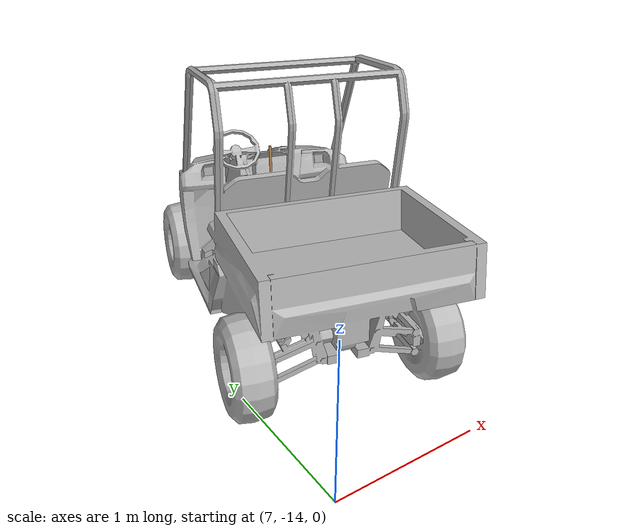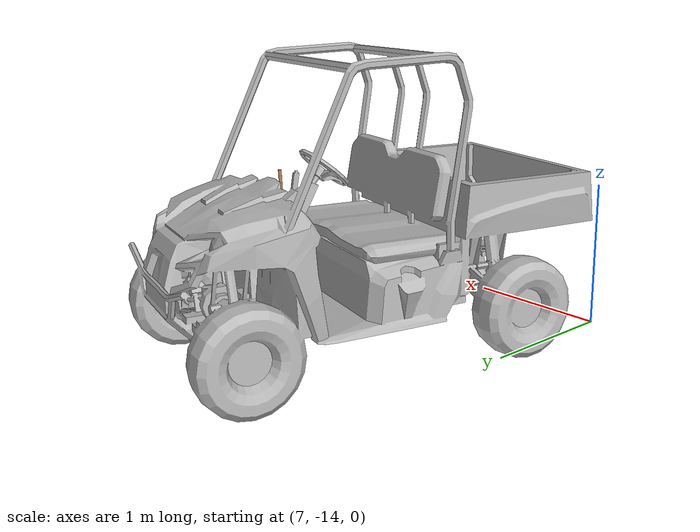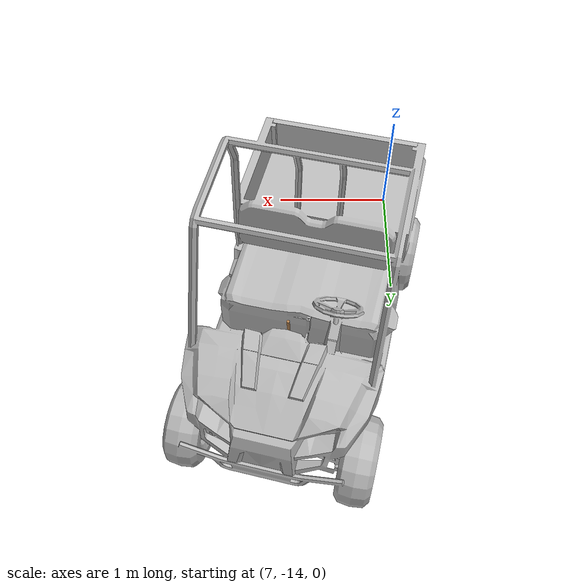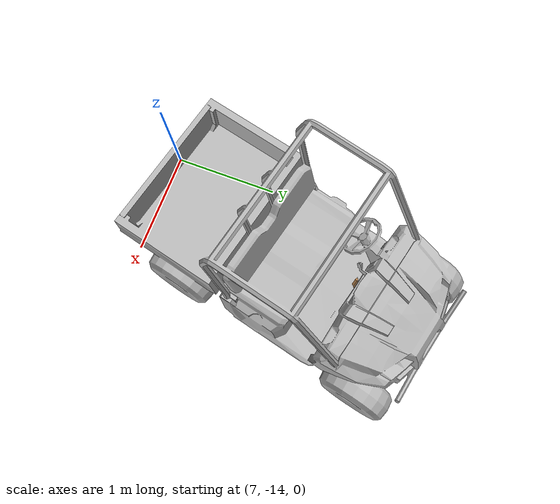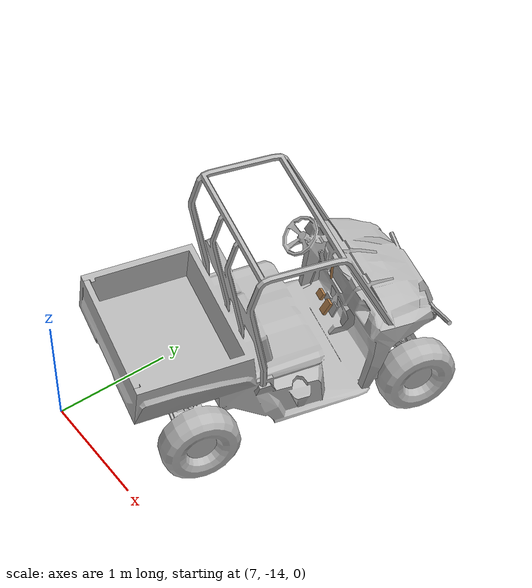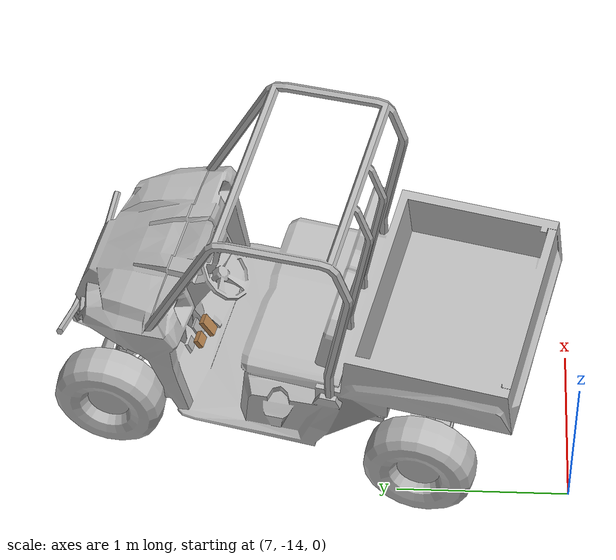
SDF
<sdf version="1.6">
 <world name="default">
  <model name="polaris_ranger_ev_clone_1_clone_clone_clone_clone_8">
   <static>true</static>
   <link name="chassis">
    <inertial>
     <mass>720</mass>
     <inertia><ixx>140</ixx><ixy>0</ixy><iyy>550</iyy><ixz>0</ixz><iyz>0</iyz><izz>550</izz></inertia>
    </inertial>
    <visual name="visual">
     <pose>0 0 0 0 0 -1.5708</pose>
     <geometry><mesh><uri>model://polaris_ranger_ev/meshes/polaris.dae</uri><scale>1 1 1</scale></mesh></geometry>
     <material>
      <script>
       <uri>model://polaris_ranger_ev/materials/scripts</uri>
       <uri>model://polaris_ranger_ev/materials/textures</uri>
       <name>Polaris/Diffuse</name>
      </script>
     </material>
    </visual>
    <collision name="chassis_bottom">
     <pose>0 0 0.35 0 -0 0</pose>
     <geometry><box><size>2 1 0.1</size></box></geometry>
    </collision>
    <collision name="cargo_bottom">
     <pose>-0.9 0 0.9 0 -0 0</pose>
     <geometry><box><size>0.9 1.2 0.01</size></box></geometry>
    </collision>
    <collision name="cargo_front">
     <pose>-0.45 0 1.025 0 -0 0</pose>
     <geometry><box><size>0.05 1.2 0.25</size></box></geometry>
    </collision>
    <collision name="cargo_back">
     <pose>-1.35 0 1.025 0 -0 0</pose>
     <geometry><box><size>0.05 1.2 0.25</size></box></geometry>
    </collision>
    <collision name="cargo_left">
     <pose>-0.9 0.6 1.025 0 -0 0</pose>
     <geometry><box><size>0.9 0.05 0.25</size></box></geometry>
    </collision>
    <collision name="cargo_right">
     <pose>-0.9 -0.6 1.025 0 -0 0</pose>
     <geometry><box><size>0.9 0.05 0.25</size></box></geometry>
    </collision>
    <collision name="seat">
     <pose>-0.1 0 0.625 0 -0 0</pose>
     <geometry><box><size>0.6 1 0.65</size></box></geometry>
    </collision>
    <collision name="seat_back">
     <pose>-0.3 0 1.125 0 -0.2 0</pose>
     <geometry><box><size>0.1 1 0.4</size></box></geometry>
    </collision>
    <collision name="engine">
     <pose>0.95 0 0.7 0 -0 0</pose>
     <geometry><box><size>0.58 1 0.8</size></box></geometry>
    </collision>
    <collision name="steering_column">
     <pose>0.525 0.3 1.025 0 -0.8 0</pose>
     <geometry><cylinder><radius>0.05</radius><length>0.45</length></cylinder></geometry>
    </collision>
   </link>
   <link name="rear_right_wheel">
    <pose>-0.85 -0.6 0.32 1.5708 -0 0</pose>
    <inertial>
     <mass>12</mass>
     <inertia><ixx>0.5</ixx><ixy>0</ixy><iyy>0.5</iyy><ixz>0</ixz><iyz>0</iyz><izz>1</izz></inertia>
    </inertial>
    <collision name="collision">
     <geometry><cylinder><radius>0.32</radius><length>0.23</length></cylinder></geometry>
     <surface>
      <friction><ode><mu>100000</mu><mu2>100000</mu2><slip1>0</slip1><slip2>0</slip2></ode></friction>
     </surface>
    </collision>
   </link>
   <joint name="rear_right_wheel_joint" type="revolute">
    <pose>0 0 -0.1 0 -0 0</pose>
    <child>rear_right_wheel</child>
    <parent>chassis</parent>
    <axis>
     <xyz>0 1 0</xyz>
     <use_parent_model_frame>1</use_parent_model_frame>
     <limit><lower>-1e+16</lower><upper>1e+16</upper></limit>
     <dynamics><spring_reference>0</spring_reference><spring_stiffness>0</spring_stiffness></dynamics>
    </axis>
    <physics><ode><limit><cfm>0</cfm><erp>0.9</erp></limit></ode></physics>
   </joint>
   <link name="rear_left_wheel">
    <pose>-0.85 0.6 0.32 1.5708 -0 0</pose>
    <inertial>
     <mass>12</mass>
     <inertia><ixx>0.5</ixx><ixy>0</ixy><iyy>0.5</iyy><ixz>0</ixz><iyz>0</iyz><izz>1</izz></inertia>
    </inertial>
    <collision name="collision">
     <geometry><cylinder><radius>0.32</radius><length>0.23</length></cylinder></geometry>
     <surface>
      <friction><ode><mu>100000</mu><mu2>100000</mu2><slip1>0</slip1><slip2>0</slip2></ode></friction>
     </surface>
    </collision>
   </link>
   <joint name="rear_left_wheel_joint" type="revolute">
    <child>rear_left_wheel</child>
    <parent>chassis</parent>
    <axis>
     <xyz>0 1 0</xyz>
     <use_parent_model_frame>1</use_parent_model_frame>
     <limit><lower>-1e+16</lower><upper>1e+16</upper></limit>
     <dynamics><spring_reference>0</spring_reference><spring_stiffness>0</spring_stiffness></dynamics>
    </axis>
    <physics><ode><limit><cfm>0</cfm><erp>0.9</erp></limit></ode></physics>
   </joint>
   <link name="front_right_wheel">
    <pose>1.03 -0.6 0.32 1.5708 -0 0</pose>
    <inertial>
     <mass>12</mass>
     <inertia><ixx>0.5</ixx><ixy>0</ixy><iyy>0.5</iyy><ixz>0</ixz><iyz>0</iyz><izz>1</izz></inertia>
    </inertial>
    <collision name="collision">
     <geometry><cylinder><radius>0.32</radius><length>0.23</length></cylinder></geometry>
     <surface>
      <friction><ode><mu>100000</mu><mu2>100000</mu2><slip1>0</slip1><slip2>0</slip2></ode></friction>
     </surface>
    </collision>
   </link>
   <link name="front_right_wheel_steering_block">
    <pose>1.03 -0.5 0.32 1.5708 -0 0</pose>
    <inertial>
     <mass>1</mass>
     <inertia><ixx>1</ixx><ixy>0</ixy><iyy>1</iyy><ixz>0</ixz><iyz>0</iyz><izz>1</izz></inertia>
    </inertial>
    <collision name="collision">
     <geometry><cylinder><radius>0.05</radius><length>0.01</length></cylinder></geometry>
    </collision>
   </link>
   <joint name="front_right_steering_joint" type="revolute">
    <child>front_right_wheel_steering_block</child>
    <parent>chassis</parent>
    <axis>
     <xyz>0 0 1</xyz>
     <limit><lower>-1</lower><upper>1</upper></limit>
     <use_parent_model_frame>1</use_parent_model_frame>
     <dynamics><spring_reference>0</spring_reference><spring_stiffness>0</spring_stiffness></dynamics>
    </axis>
    <physics><ode><limit><cfm>0</cfm><erp>0.9</erp></limit></ode></physics>
   </joint>
   <joint name="front_right_wheel_joint" type="revolute">
    <child>front_right_wheel</child>
    <parent>front_right_wheel_steering_block</parent>
    <axis>
     <xyz>0 1 0</xyz>
     <use_parent_model_frame>1</use_parent_model_frame>
     <limit><lower>-1e+16</lower><upper>1e+16</upper></limit>
     <dynamics><spring_reference>0</spring_reference><spring_stiffness>0</spring_stiffness></dynamics>
    </axis>
    <physics><ode><limit><cfm>0</cfm><erp>0.9</erp></limit></ode></physics>
   </joint>
   <link name="front_left_wheel">
    <pose>1.03 0.6 0.32 1.5708 -0 0</pose>
    <inertial>
     <mass>12</mass>
     <inertia><ixx>0.5</ixx><ixy>0</ixy><iyy>0.5</iyy><ixz>0</ixz><iyz>0</iyz><izz>1</izz></inertia>
    </inertial>
    <collision name="collision">
     <geometry><cylinder><radius>0.32</radius><length>0.23</length></cylinder></geometry>
     <surface>
      <friction><ode><mu>100000</mu><mu2>100000</mu2><slip1>0</slip1><slip2>0</slip2></ode></friction>
     </surface>
    </collision>
   </link>
   <link name="front_left_wheel_steering_block">
    <pose>1.03 0.5 0.32 1.5708 -0 0</pose>
    <inertial>
     <mass>1</mass>
     <inertia><ixx>1</ixx><ixy>0</ixy><iyy>1</iyy><ixz>0</ixz><iyz>0</iyz><izz>1</izz></inertia>
    </inertial>
    <collision name="collision">
     <geometry><cylinder><radius>0.05</radius><length>0.01</length></cylinder></geometry>
    </collision>
   </link>
   <joint name="front_left_steering_joint" type="revolute">
    <child>front_left_wheel_steering_block</child>
    <parent>chassis</parent>
    <axis>
     <xyz>0 0 1</xyz>
     <limit><lower>-1</lower><upper>1</upper></limit>
     <use_parent_model_frame>1</use_parent_model_frame>
     <dynamics><spring_reference>0</spring_reference><spring_stiffness>0</spring_stiffness></dynamics>
    </axis>
    <physics><ode><limit><cfm>0</cfm><erp>0.9</erp></limit></ode></physics>
   </joint>
   <joint name="front_left_wheel_joint" type="revolute">
    <child>front_left_wheel</child>
    <parent>front_left_wheel_steering_block</parent>
    <axis>
     <xyz>0 1 0</xyz>
     <use_parent_model_frame>1</use_parent_model_frame>
     <limit><lower>-1e+16</lower><upper>1e+16</upper></limit>
     <dynamics><spring_reference>0</spring_reference><spring_stiffness>0</spring_stiffness></dynamics>
    </axis>
    <physics><ode><limit><cfm>0</cfm><erp>0.9</erp></limit></ode></physics>
   </joint>
   <link name="gas_pedal">
    <pose>0.53 0.14 0.56 0 -1 0</pose>
    <gravity>0</gravity>
    <inertial>
     <mass>0.1</mass>
     <inertia><ixx>0.01</ixx><ixy>0</ixy><ixz>0</ixz><iyy>0.01</iyy><iyz>0</iyz><izz>0.01</izz></inertia>
    </inertial>
    <collision name="gas_pedal_collision"><geometry><box><size>0.12 0.07 0.03</size></box></geometry></collision>
    <visual name="gas_pedal_visual">
     <geometry><box><size>0.12 0.07 0.03</size></box></geometry>
     <material>
      <script><uri>file://media/materials/scripts/gazebo.material</uri><name>Gazebo/Wood</name></script>
      <ambient>0.2 0.2 0.2 1</ambient>
      <diffuse>0.2 0.2 0.2 1</diffuse>
      <specular>0.2 0.2 0.2 1</specular>
      <emissive>0.5 0.5 0.5 1</emissive>
     </material>
    </visual>
   </link>
   <link name="brake_pedal">
    <gravity>0</gravity>
    <pose>0.54 0.27 0.58 0 -1 0</pose>
    <inertial>
     <mass>0.1</mass>
     <inertia><ixx>0.01</ixx><ixy>0</ixy><ixz>0</ixz><iyy>0.01</iyy><iyz>0</iyz><izz>0.01</izz></inertia>
    </inertial>
    <collision name="brake_pedal_collision">
     <geometry><box><size>0.06 0.08 0.03</size></box></geometry>
    </collision>
    <visual name="brake_pedal_visual">
     <geometry><box><size>0.06 0.08 0.03</size></box></geometry>
     <material>
      <script><uri>file://media/materials/scripts/gazebo.material</uri><name>Gazebo/Wood</name></script>
      <ambient>0.2 0.2 0.2 1</ambient>
      <diffuse>0.2 0.2 0.2 1</diffuse>
      <specular>0.2 0.2 0.2 1</specular>
      <emissive>0.5 0.5 0.5 1</emissive>
     </material>
    </visual>
   </link>
   <link name="steering_wheel">
    <pose>0.37 0.3 1.2 0 -0.8 0</pose>
    <inertial>
     <mass>1</mass>
     <inertia><ixx>0.1</ixx><ixy>0</ixy><ixz>0</ixz><iyy>0.1</iyy><iyz>0</iyz><izz>1</izz></inertia>
    </inertial>
    <collision name="steering_wheel_post_left">
     <pose>0 0.08 0 1.5708 -0 0</pose>
     <geometry><cylinder><radius>0.02</radius><length>0.15</length></cylinder></geometry>
    </collision>
    <collision name="steering_wheel_post_right">
     <pose>0 -0.08 0 1.5708 -0 0</pose>
     <geometry><cylinder><radius>0.02</radius><length>0.15</length></cylinder></geometry>
    </collision>
    <collision name="steering_wheel_post_middle">
     <pose>-0.08 0 0 3.14159 1.57079 3.14159</pose>
     <geometry><cylinder><radius>0.02</radius><length>0.15</length></cylinder></geometry>
    </collision>
    <collision name="collision00">
     <pose>0.15 0 0 3.14159 1.57079 -1.57079</pose>
     <geometry><cylinder><length>0.105066</length><radius>0.01</radius></cylinder></geometry>
    </collision>
    <collision name="collision01">
     <pose>0.121353 0.088168 0 3.14159 1.57079 -0.942483</pose>
     <geometry><cylinder><length>0.105066</length><radius>0.01</radius></cylinder></geometry>
    </collision>
    <collision name="collision02">
     <pose>0.046353 0.142658 0 3.14159 1.57079 -0.314163</pose>
     <geometry><cylinder><length>0.105066</length><radius>0.01</radius></cylinder></geometry>
    </collision>
    <collision name="collision03">
     <pose>-0.046353 0.142658 0 3.14159 1.57079 0.314163</pose>
     <geometry><cylinder><length>0.105066</length><radius>0.01</radius></cylinder></geometry>
    </collision>
    <collision name="collision04">
     <pose>-0.121353 0.088168 0 -3.14159 1.57079 0.942483</pose>
     <geometry><cylinder><length>0.105066</length><radius>0.01</radius></cylinder></geometry>
    </collision>
    <collision name="collision05">
     <pose>-0.15 0 0 -3.14159 1.57079 1.57079</pose>
     <geometry><cylinder><length>0.105066</length><radius>0.01</radius></cylinder></geometry>
    </collision>
    <collision name="collision06">
     <pose>-0.121353 -0.088168 0 3.14159 1.57079 2.19912</pose>
     <geometry><cylinder><length>0.105066</length><radius>0.01</radius></cylinder></geometry>
    </collision>
    <collision name="collision07">
     <pose>-0.046353 -0.142658 0 -3.14159 1.57079 2.82743</pose>
     <geometry><cylinder><length>0.105066</length><radius>0.01</radius></cylinder></geometry>
    </collision>
    <collision name="collision08">
     <pose>0.046353 -0.142658 0 3.14159 1.57079 -2.82743</pose>
     <geometry><cylinder><length>0.105066</length><radius>0.01</radius></cylinder></geometry>
    </collision>
    <collision name="collision09">
     <pose>0.121353 -0.088168 0 -3.14159 1.57079 -2.19911</pose>
     <geometry><cylinder><length>0.105066</length><radius>0.01</radius></cylinder></geometry>
    </collision>
   </link>
   <link name="hand_brake">
    <pose>0.5 0 1.05 3.14159 -0.058407 3.14159</pose>
    <inertial>
     <mass>1</mass>
     <pose>0 0 -0.15 0 -0 0</pose>
     <inertia><ixx>0.1</ixx><ixy>0</ixy><ixz>0</ixz><iyy>0.1</iyy><iyz>0</iyz><izz>1</izz></inertia>
    </inertial>
    <collision name="hand_brake_collision">
     <pose>0 0 -0.1 0 -0 0</pose>
     <geometry><cylinder><radius>0.01</radius><length>0.2</length></cylinder></geometry>
    </collision>
    <visual name="hand_brake_visual">
     <pose>0 0 -0.1 0 -0 0</pose>
     <geometry><cylinder><radius>0.01</radius><length>0.2</length></cylinder></geometry>
     <material>
      <script><uri>file://media/materials/scripts/gazebo.material</uri><name>Gazebo/Wood</name></script>
     </material>
    </visual>
   </link>
   <joint name="gas_joint" type="prismatic">
    <parent>chassis</parent>
    <child>gas_pedal</child>
    <axis>
     <xyz>1 0 -1</xyz>
     <limit><lower>0</lower><upper>0.15</upper></limit>
     <use_parent_model_frame>1</use_parent_model_frame>
     <dynamics><spring_reference>0</spring_reference><spring_stiffness>0</spring_stiffness></dynamics>
    </axis>
   </joint>
   <joint name="brake_joint" type="prismatic">
    <parent>chassis</parent>
    <child>brake_pedal</child>
    <axis>
     <xyz>1 0 -0.6</xyz>
     <limit><lower>0</lower><upper>0.15</upper></limit>
     <use_parent_model_frame>1</use_parent_model_frame>
     <dynamics><spring_reference>0</spring_reference><spring_stiffness>0</spring_stiffness></dynamics>
    </axis>
   </joint>
   <joint name="steering_joint" type="revolute">
    <pose>0 0 0 1.5708 -0.8 0</pose>
    <parent>chassis</parent>
    <child>steering_wheel</child>
    <axis>
     <xyz>-1 0 1.023</xyz>
     <limit><lower>-7.853</lower><upper>7.853</upper></limit>
     <use_parent_model_frame>1</use_parent_model_frame>
     <dynamics><spring_reference>0</spring_reference><spring_stiffness>0</spring_stiffness></dynamics>
    </axis>
   </joint>
   <joint name="hand_brake_joint" type="revolute">
    <parent>chassis</parent>
    <child>hand_brake</child>
    <axis>
     <xyz>0 -1 0</xyz>
     <limit><lower>0</lower><upper>0.6</upper></limit>
     <use_parent_model_frame>1</use_parent_model_frame>
     <dynamics><spring_reference>0</spring_reference><spring_stiffness>0</spring_stiffness></dynamics>
    </axis>
   </joint>
   <pose>7.7565 -12.4162 -5.2e-05 0 4.8e-05 1.33706</pose>
  </model>
 </world>
</sdf>
